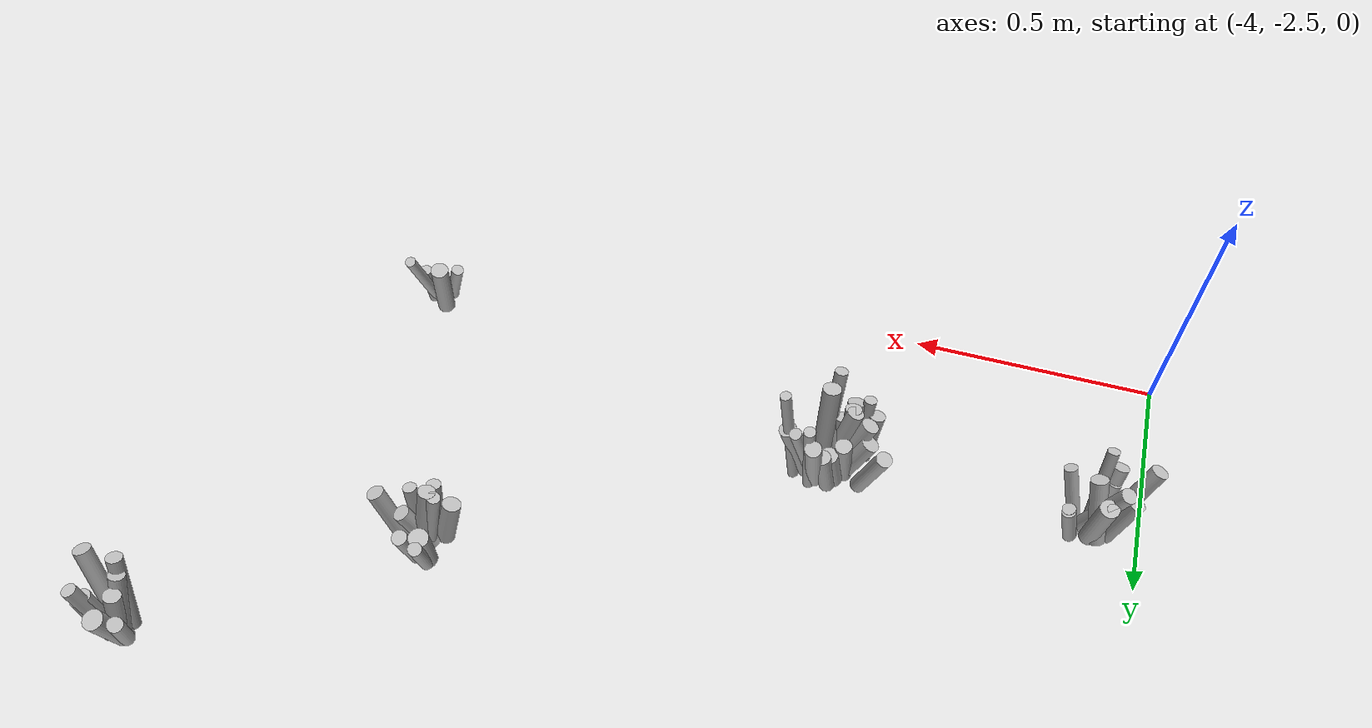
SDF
<sdf version="1.6">
 <world name="default">
  <model name="tussocks">
   <static>true</static>
   <link name="tuft16_1">
    <pose>-2.4690 -2.3362 0.0472 0 0.3118 2.7454</pose>
    <visual name="tuft16_1_v">
     <geometry><cylinder><radius>0.0131</radius><length>0.1025</length></cylinder></geometry>
     <material>
      <script>
       <uri>model://bushfire/materials/scripts</uri>
       <uri>model://bushfire/materials/textures</uri>
       <name>Bushfire/Foliage2</name>
      </script>
     </material>
    </visual>
   </link>
   <link name="tuft16_2">
    <pose>-2.4186 -2.2923 0.0840 0 0.3744 1.4002</pose>
    <visual name="tuft16_2_v">
     <geometry><cylinder><radius>0.0115</radius><length>0.1826</length></cylinder></geometry>
     <material>
      <script>
       <uri>model://bushfire/materials/scripts</uri>
       <uri>model://bushfire/materials/textures</uri>
       <name>Bushfire/Tussock</name>
      </script>
     </material>
    </visual>
   </link>
   <link name="tuft16_5">
    <pose>-2.4174 -2.3171 0.0454 0 0.1438 1.2560</pose>
    <visual name="tuft16_5_v">
     <geometry><cylinder><radius>0.0136</radius><length>0.0986</length></cylinder></geometry>
     <material>
      <script>
       <uri>model://bushfire/materials/scripts</uri>
       <uri>model://bushfire/materials/textures</uri>
       <name>Bushfire/Foliage2</name>
      </script>
     </material>
    </visual>
   </link>
   <link name="tuft16_6">
    <pose>-2.4590 -2.2957 0.0648 0 0.1835 2.0541</pose>
    <visual name="tuft16_6_v">
     <geometry><cylinder><radius>0.0190</radius><length>0.1408</length></cylinder></geometry>
     <material>
      <script>
       <uri>model://bushfire/materials/scripts</uri>
       <uri>model://bushfire/materials/textures</uri>
       <name>Bushfire/Tussock</name>
      </script>
     </material>
    </visual>
   </link>
   <link name="tuft28_0">
    <pose>-2.6673 -1.7583 0.0583 0 0.1272 4.6584</pose>
    <visual name="tuft28_0_v">
     <geometry><cylinder><radius>0.0145</radius><length>0.1268</length></cylinder></geometry>
     <material>
      <script>
       <uri>model://bushfire/materials/scripts</uri>
       <uri>model://bushfire/materials/textures</uri>
       <name>Bushfire/Foliage2</name>
      </script>
     </material>
    </visual>
   </link>
   <link name="tuft28_1">
    <pose>-2.5912 -1.7122 0.0620 0 0.3145 6.2268</pose>
    <visual name="tuft28_1_v">
     <geometry><cylinder><radius>0.0176</radius><length>0.1348</length></cylinder></geometry>
     <material>
      <script>
       <uri>model://bushfire/materials/scripts</uri>
       <uri>model://bushfire/materials/textures</uri>
       <name>Bushfire/Tussock</name>
      </script>
     </material>
    </visual>
   </link>
   <link name="tuft28_2">
    <pose>-2.6803 -1.6624 0.0541 0 0.2093 1.9016</pose>
    <visual name="tuft28_2_v">
     <geometry><cylinder><radius>0.0198</radius><length>0.1175</length></cylinder></geometry>
     <material>
      <script>
       <uri>model://bushfire/materials/scripts</uri>
       <uri>model://bushfire/materials/textures</uri>
       <name>Bushfire/Foliage2</name>
      </script>
     </material>
    </visual>
   </link>
   <link name="tuft28_3">
    <pose>-2.6801 -1.7109 0.0788 0 0.1868 3.3238</pose>
    <visual name="tuft28_3_v">
     <geometry><cylinder><radius>0.0136</radius><length>0.1713</length></cylinder></geometry>
     <material>
      <script>
       <uri>model://bushfire/materials/scripts</uri>
       <uri>model://bushfire/materials/textures</uri>
       <name>Bushfire/Tussock</name>
      </script>
     </material>
    </visual>
   </link>
   <link name="tuft28_4">
    <pose>-2.6987 -1.7409 0.0456 0 0.2671 3.9078</pose>
    <visual name="tuft28_4_v">
     <geometry><cylinder><radius>0.0187</radius><length>0.0992</length></cylinder></geometry>
     <material>
      <script>
       <uri>model://bushfire/materials/scripts</uri>
       <uri>model://bushfire/materials/textures</uri>
       <name>Bushfire/Tussock</name>
      </script>
     </material>
    </visual>
   </link>
   <link name="tuft28_5">
    <pose>-2.6509 -1.6593 0.0514 0 0.2732 1.2957</pose>
    <visual name="tuft28_5_v">
     <geometry><cylinder><radius>0.0156</radius><length>0.1118</length></cylinder></geometry>
     <material>
      <script>
       <uri>model://bushfire/materials/scripts</uri>
       <uri>model://bushfire/materials/textures</uri>
       <name>Bushfire/Tussock</name>
      </script>
     </material>
    </visual>
   </link>
   <link name="tuft28_6">
    <pose>-2.6853 -1.6417 0.0612 0 0.3454 1.8719</pose>
    <visual name="tuft28_6_v">
     <geometry><cylinder><radius>0.0136</radius><length>0.1330</length></cylinder></geometry>
     <material>
      <script>
       <uri>model://bushfire/materials/scripts</uri>
       <uri>model://bushfire/materials/textures</uri>
       <name>Bushfire/Tussock</name>
      </script>
     </material>
    </visual>
   </link>
   <link name="tuft28_7">
    <pose>-2.6664 -1.7096 0.0801 0 0.2022 3.8493</pose>
    <visual name="tuft28_7_v">
     <geometry><cylinder><radius>0.0171</radius><length>0.1742</length></cylinder></geometry>
     <material>
      <script>
       <uri>model://bushfire/materials/scripts</uri>
       <uri>model://bushfire/materials/textures</uri>
       <name>Bushfire/Tussock</name>
      </script>
     </material>
    </visual>
   </link>
   <link name="tuft28_8">
    <pose>-2.6193 -1.7573 0.0453 0 0.1311 5.4562</pose>
    <visual name="tuft28_8_v">
     <geometry><cylinder><radius>0.0141</radius><length>0.0984</length></cylinder></geometry>
     <material>
      <script>
       <uri>model://bushfire/materials/scripts</uri>
       <uri>model://bushfire/materials/textures</uri>
       <name>Bushfire/Foliage2</name>
      </script>
     </material>
    </visual>
   </link>
   <link name="tuft28_9">
    <pose>-2.6498 -1.7035 0.0529 0 0.4067 0.3012</pose>
    <visual name="tuft28_9_v">
     <geometry><cylinder><radius>0.0169</radius><length>0.1150</length></cylinder></geometry>
     <material>
      <script>
       <uri>model://bushfire/materials/scripts</uri>
       <uri>model://bushfire/materials/textures</uri>
       <name>Bushfire/Tussock</name>
      </script>
     </material>
    </visual>
   </link>
   <link name="tuft70_0">
    <pose>-3.9208 -2.1642 0.0631 0 0.3384 4.4041</pose>
    <visual name="tuft70_0_v">
     <geometry><cylinder><radius>0.0165</radius><length>0.1372</length></cylinder></geometry>
     <material>
      <script>
       <uri>model://bushfire/materials/scripts</uri>
       <uri>model://bushfire/materials/textures</uri>
       <name>Bushfire/Tussock</name>
      </script>
     </material>
    </visual>
   </link>
   <link name="tuft70_1">
    <pose>-3.8585 -2.0830 0.0480 0 0.2937 0.5918</pose>
    <visual name="tuft70_1_v">
     <geometry><cylinder><radius>0.0132</radius><length>0.1043</length></cylinder></geometry>
     <material>
      <script>
       <uri>model://bushfire/materials/scripts</uri>
       <uri>model://bushfire/materials/textures</uri>
       <name>Bushfire/Tussock</name>
      </script>
     </material>
    </visual>
   </link>
   <link name="tuft70_2">
    <pose>-3.9174 -2.1466 0.0491 0 0.3809 4.3457</pose>
    <visual name="tuft70_2_v">
     <geometry><cylinder><radius>0.0142</radius><length>0.1068</length></cylinder></geometry>
     <material>
      <script>
       <uri>model://bushfire/materials/scripts</uri>
       <uri>model://bushfire/materials/textures</uri>
       <name>Bushfire/Tussock</name>
      </script>
     </material>
    </visual>
   </link>
   <link name="tuft70_3">
    <pose>-3.9528 -2.1100 0.0588 0 0.2081 3.0536</pose>
    <visual name="tuft70_3_v">
     <geometry><cylinder><radius>0.0147</radius><length>0.1278</length></cylinder></geometry>
     <material>
      <script>
       <uri>model://bushfire/materials/scripts</uri>
       <uri>model://bushfire/materials/textures</uri>
       <name>Bushfire/Tussock</name>
      </script>
     </material>
    </visual>
   </link>
   <link name="tuft70_4">
    <pose>-3.8551 -2.1480 0.0604 0 0.3734 5.6871</pose>
    <visual name="tuft70_4_v">
     <geometry><cylinder><radius>0.0133</radius><length>0.1312</length></cylinder></geometry>
     <material>
      <script>
       <uri>model://bushfire/materials/scripts</uri>
       <uri>model://bushfire/materials/textures</uri>
       <name>Bushfire/Tussock</name>
      </script>
     </material>
    </visual>
   </link>
   <link name="tuft70_5">
    <pose>-3.9021 -2.1632 0.0835 0 0.2357 4.7695</pose>
    <visual name="tuft70_5_v">
     <geometry><cylinder><radius>0.0122</radius><length>0.1815</length></cylinder></geometry>
     <material>
      <script>
       <uri>model://bushfire/materials/scripts</uri>
       <uri>model://bushfire/materials/textures</uri>
       <name>Bushfire/Tussock</name>
      </script>
     </material>
    </visual>
   </link>
   <link name="tuft70_6">
    <pose>-3.9104 -2.0897 0.0644 0 0.1831 1.7881</pose>
    <visual name="tuft70_6_v">
     <geometry><cylinder><radius>0.0190</radius><length>0.1401</length></cylinder></geometry>
     <material>
      <script>
       <uri>model://bushfire/materials/scripts</uri>
       <uri>model://bushfire/materials/textures</uri>
       <name>Bushfire/Foliage2</name>
      </script>
     </material>
    </visual>
   </link>
   <link name="tuft70_7">
    <pose>-3.9048 -2.1144 0.0693 0 0.3600 5.4228</pose>
    <visual name="tuft70_7_v">
     <geometry><cylinder><radius>0.0173</radius><length>0.1507</length></cylinder></geometry>
     <material>
      <script>
       <uri>model://bushfire/materials/scripts</uri>
       <uri>model://bushfire/materials/textures</uri>
       <name>Bushfire/Foliage2</name>
      </script>
     </material>
    </visual>
   </link>
   <link name="tuft70_8">
    <pose>-3.9127 -2.0947 0.0650 0 0.2647 1.9473</pose>
    <visual name="tuft70_8_v">
     <geometry><cylinder><radius>0.0119</radius><length>0.1413</length></cylinder></geometry>
     <material>
      <script>
       <uri>model://bushfire/materials/scripts</uri>
       <uri>model://bushfire/materials/textures</uri>
       <name>Bushfire/Tussock</name>
      </script>
     </material>
    </visual>
   </link>
   <link name="tuft70_9">
    <pose>-3.9621 -2.1492 0.0820 0 0.3727 3.6912</pose>
    <visual name="tuft70_9_v">
     <geometry><cylinder><radius>0.0175</radius><length>0.1782</length></cylinder></geometry>
     <material>
      <script>
       <uri>model://bushfire/materials/scripts</uri>
       <uri>model://bushfire/materials/textures</uri>
       <name>Bushfire/Foliage2</name>
      </script>
     </material>
    </visual>
   </link>
   <link name="tuft70_10">
    <pose>-3.9132 -2.1105 0.0782 0 0.3498 2.7158</pose>
    <visual name="tuft70_10_v">
     <geometry><cylinder><radius>0.0164</radius><length>0.1701</length></cylinder></geometry>
     <material>
      <script>
       <uri>model://bushfire/materials/scripts</uri>
       <uri>model://bushfire/materials/textures</uri>
       <name>Bushfire/Foliage2</name>
      </script>
     </material>
    </visual>
   </link>
   <link name="tuft70_11">
    <pose>-3.8592 -2.0881 0.0488 0 0.3039 0.5189</pose>
    <visual name="tuft70_11_v">
     <geometry><cylinder><radius>0.0129</radius><length>0.1061</length></cylinder></geometry>
     <material>
      <script>
       <uri>model://bushfire/materials/scripts</uri>
       <uri>model://bushfire/materials/textures</uri>
       <name>Bushfire/Tussock</name>
      </script>
     </material>
    </visual>
   </link>
   <link name="tuft78_0">
    <pose>-3.3772 -2.1254 0.0714 0 0.2384 5.9199</pose>
    <visual name="tuft78_0_v">
     <geometry><cylinder><radius>0.0110</radius><length>0.1553</length></cylinder></geometry>
     <material>
      <script>
       <uri>model://bushfire/materials/scripts</uri>
       <uri>model://bushfire/materials/textures</uri>
       <name>Bushfire/Foliage2</name>
      </script>
     </material>
    </visual>
   </link>
   <link name="tuft78_1">
    <pose>-3.3927 -2.1527 0.0527 0 0.2338 5.1769</pose>
    <visual name="tuft78_1_v">
     <geometry><cylinder><radius>0.0163</radius><length>0.1146</length></cylinder></geometry>
     <material>
      <script>
       <uri>model://bushfire/materials/scripts</uri>
       <uri>model://bushfire/materials/textures</uri>
       <name>Bushfire/Tussock</name>
      </script>
     </material>
    </visual>
   </link>
   <link name="tuft78_2">
    <pose>-3.3773 -2.0618 0.0556 0 0.2351 0.9460</pose>
    <visual name="tuft78_2_v">
     <geometry><cylinder><radius>0.0162</radius><length>0.1209</length></cylinder></geometry>
     <material>
      <script>
       <uri>model://bushfire/materials/scripts</uri>
       <uri>model://bushfire/materials/textures</uri>
       <name>Bushfire/Foliage2</name>
      </script>
     </material>
    </visual>
   </link>
   <link name="tuft78_3">
    <pose>-3.4304 -2.1151 0.0511 0 0.4197 3.3369</pose>
    <visual name="tuft78_3_v">
     <geometry><cylinder><radius>0.0188</radius><length>0.1112</length></cylinder></geometry>
     <material>
      <script>
       <uri>model://bushfire/materials/scripts</uri>
       <uri>model://bushfire/materials/textures</uri>
       <name>Bushfire/Tussock</name>
      </script>
     </material>
    </visual>
   </link>
   <link name="tuft78_4">
    <pose>-3.3868 -2.0788 0.0485 0 0.2468 0.8932</pose>
    <visual name="tuft78_4_v">
     <geometry><cylinder><radius>0.0187</radius><length>0.1054</length></cylinder></geometry>
     <material>
      <script>
       <uri>model://bushfire/materials/scripts</uri>
       <uri>model://bushfire/materials/textures</uri>
       <name>Bushfire/Foliage2</name>
      </script>
     </material>
    </visual>
   </link>
   <link name="tuft78_5">
    <pose>-3.4461 -2.1749 0.0536 0 0.2241 4.2333</pose>
    <visual name="tuft78_5_v">
     <geometry><cylinder><radius>0.0177</radius><length>0.1164</length></cylinder></geometry>
     <material>
      <script>
       <uri>model://bushfire/materials/scripts</uri>
       <uri>model://bushfire/materials/textures</uri>
       <name>Bushfire/Tussock</name>
      </script>
     </material>
    </visual>
   </link>
   <link name="tuft78_6">
    <pose>-3.4070 -2.1474 0.0716 0 0.1447 4.8857</pose>
    <visual name="tuft78_6_v">
     <geometry><cylinder><radius>0.0170</radius><length>0.1556</length></cylinder></geometry>
     <material>
      <script>
       <uri>model://bushfire/materials/scripts</uri>
       <uri>model://bushfire/materials/textures</uri>
       <name>Bushfire/Foliage2</name>
      </script>
     </material>
    </visual>
   </link>
   <link name="tuft78_7">
    <pose>-3.4074 -2.0985 0.0557 0 0.1842 1.1557</pose>
    <visual name="tuft78_7_v">
     <geometry><cylinder><radius>0.0170</radius><length>0.1210</length></cylinder></geometry>
     <material>
      <script>
       <uri>model://bushfire/materials/scripts</uri>
       <uri>model://bushfire/materials/textures</uri>
       <name>Bushfire/Tussock</name>
      </script>
     </material>
    </visual>
   </link>
   <link name="tuft78_8">
    <pose>-3.4088 -2.1672 0.0661 0 0.3050 4.7927</pose>
    <visual name="tuft78_8_v">
     <geometry><cylinder><radius>0.0180</radius><length>0.1436</length></cylinder></geometry>
     <material>
      <script>
       <uri>model://bushfire/materials/scripts</uri>
       <uri>model://bushfire/materials/textures</uri>
       <name>Bushfire/Tussock</name>
      </script>
     </material>
    </visual>
   </link>
   <link name="tuft78_9">
    <pose>-3.4300 -2.1816 0.0703 0 0.1544 4.4767</pose>
    <visual name="tuft78_9_v">
     <geometry><cylinder><radius>0.0130</radius><length>0.1528</length></cylinder></geometry>
     <material>
      <script>
       <uri>model://bushfire/materials/scripts</uri>
       <uri>model://bushfire/materials/textures</uri>
       <name>Bushfire/Foliage2</name>
      </script>
     </material>
    </visual>
   </link>
   <link name="tuft78_10">
    <pose>-3.4656 -2.0762 0.0680 0 0.3285 2.5459</pose>
    <visual name="tuft78_10_v">
     <geometry><cylinder><radius>0.0167</radius><length>0.1479</length></cylinder></geometry>
     <material>
      <script>
       <uri>model://bushfire/materials/scripts</uri>
       <uri>model://bushfire/materials/textures</uri>
       <name>Bushfire/Tussock</name>
      </script>
     </material>
    </visual>
   </link>
   <link name="tuft137_0">
    <pose>-3.4204 -2.1320 0.0649 0 0.3739 3.5234</pose>
    <visual name="tuft137_0_v">
     <geometry><cylinder><radius>0.0185</radius><length>0.1412</length></cylinder></geometry>
     <material>
      <script>
       <uri>model://bushfire/materials/scripts</uri>
       <uri>model://bushfire/materials/textures</uri>
       <name>Bushfire/Tussock</name>
      </script>
     </material>
    </visual>
   </link>
   <link name="tuft137_1">
    <pose>-3.3430 -2.0522 0.0993 0 0.1689 1.2710</pose>
    <visual name="tuft137_1_v">
     <geometry><cylinder><radius>0.0119</radius><length>0.2158</length></cylinder></geometry>
     <material>
      <script>
       <uri>model://bushfire/materials/scripts</uri>
       <uri>model://bushfire/materials/textures</uri>
       <name>Bushfire/Tussock</name>
      </script>
     </material>
    </visual>
   </link>
   <link name="tuft137_2">
    <pose>-3.2957 -2.0771 0.1220 0 0.1439 0.4437</pose>
    <visual name="tuft137_2_v">
     <geometry><cylinder><radius>0.0111</radius><length>0.2652</length></cylinder></geometry>
     <material>
      <script>
       <uri>model://bushfire/materials/scripts</uri>
       <uri>model://bushfire/materials/textures</uri>
       <name>Bushfire/Tussock</name>
      </script>
     </material>
    </visual>
   </link>
   <link name="tuft137_3">
    <pose>-3.3136 -2.0867 0.0710 0 0.3428 0.4258</pose>
    <visual name="tuft137_3_v">
     <geometry><cylinder><radius>0.0179</radius><length>0.1542</length></cylinder></geometry>
     <material>
      <script>
       <uri>model://bushfire/materials/scripts</uri>
       <uri>model://bushfire/materials/textures</uri>
       <name>Bushfire/Tussock</name>
      </script>
     </material>
    </visual>
   </link>
   <link name="tuft137_4">
    <pose>-3.3939 -2.1349 0.0733 0 0.2780 3.8199</pose>
    <visual name="tuft137_4_v">
     <geometry><cylinder><radius>0.0173</radius><length>0.1594</length></cylinder></geometry>
     <material>
      <script>
       <uri>model://bushfire/materials/scripts</uri>
       <uri>model://bushfire/materials/textures</uri>
       <name>Bushfire/Foliage2</name>
      </script>
     </material>
    </visual>
   </link>
   <link name="tuft137_5">
    <pose>-3.3306 -2.0618 0.0954 0 0.3491 0.9987</pose>
    <visual name="tuft137_5_v">
     <geometry><cylinder><radius>0.0123</radius><length>0.2073</length></cylinder></geometry>
     <material>
      <script>
       <uri>model://bushfire/materials/scripts</uri>
       <uri>model://bushfire/materials/textures</uri>
       <name>Bushfire/Foliage2</name>
      </script>
     </material>
    </visual>
   </link>
   <link name="tuft137_6">
    <pose>-3.3643 -2.1638 0.1068 0 0.1986 4.6405</pose>
    <visual name="tuft137_6_v">
     <geometry><cylinder><radius>0.0136</radius><length>0.2322</length></cylinder></geometry>
     <material>
      <script>
       <uri>model://bushfire/materials/scripts</uri>
       <uri>model://bushfire/materials/textures</uri>
       <name>Bushfire/Tussock</name>
      </script>
     </material>
    </visual>
   </link>
   <link name="tuft137_7">
    <pose>-3.3590 -2.1202 0.1084 0 0.1192 4.8086</pose>
    <visual name="tuft137_7_v">
     <geometry><cylinder><radius>0.0185</radius><length>0.2357</length></cylinder></geometry>
     <material>
      <script>
       <uri>model://bushfire/materials/scripts</uri>
       <uri>model://bushfire/materials/textures</uri>
       <name>Bushfire/Tussock</name>
      </script>
     </material>
    </visual>
   </link>
   <link name="tuft137_8">
    <pose>-3.3540 -2.0480 0.0880 0 0.3311 1.4667</pose>
    <visual name="tuft137_8_v">
     <geometry><cylinder><radius>0.0168</radius><length>0.1912</length></cylinder></geometry>
     <material>
      <script>
       <uri>model://bushfire/materials/scripts</uri>
       <uri>model://bushfire/materials/textures</uri>
       <name>Bushfire/Foliage2</name>
      </script>
     </material>
    </visual>
   </link>
   <link name="tuft181_0">
    <pose>-2.2284 -1.3345 0.0651 0 0.3847 2.5315</pose>
    <visual name="tuft181_0_v">
     <geometry><cylinder><radius>0.0146</radius><length>0.1414</length></cylinder></geometry>
     <material>
      <script>
       <uri>model://bushfire/materials/scripts</uri>
       <uri>model://bushfire/materials/textures</uri>
       <name>Bushfire/Tussock</name>
      </script>
     </material>
    </visual>
   </link>
   <link name="tuft181_3">
    <pose>-2.2030 -1.3592 0.0649 0 0.2171 3.7539</pose>
    <visual name="tuft181_3_v">
     <geometry><cylinder><radius>0.0166</radius><length>0.1410</length></cylinder></geometry>
     <material>
      <script>
       <uri>model://bushfire/materials/scripts</uri>
       <uri>model://bushfire/materials/textures</uri>
       <name>Bushfire/Foliage2</name>
      </script>
     </material>
    </visual>
   </link>
   <link name="tuft181_4">
    <pose>-2.1994 -1.4020 0.0828 0 0.2448 4.6823</pose>
    <visual name="tuft181_4_v">
     <geometry><cylinder><radius>0.0158</radius><length>0.1799</length></cylinder></geometry>
     <material>
      <script>
       <uri>model://bushfire/materials/scripts</uri>
       <uri>model://bushfire/materials/textures</uri>
       <name>Bushfire/Tussock</name>
      </script>
     </material>
    </visual>
   </link>
   <link name="tuft181_5">
    <pose>-2.2032 -1.3772 0.0726 0 0.3330 4.4754</pose>
    <visual name="tuft181_5_v">
     <geometry><cylinder><radius>0.0158</radius><length>0.1579</length></cylinder></geometry>
     <material>
      <script>
       <uri>model://bushfire/materials/scripts</uri>
       <uri>model://bushfire/materials/textures</uri>
       <name>Bushfire/Tussock</name>
      </script>
     </material>
    </visual>
   </link>
   <link name="tuft181_6">
    <pose>-2.1601 -1.3554 0.0547 0 0.1811 0.0071</pose>
    <visual name="tuft181_6_v">
     <geometry><cylinder><radius>0.0200</radius><length>0.1189</length></cylinder></geometry>
     <material>
      <script>
       <uri>model://bushfire/materials/scripts</uri>
       <uri>model://bushfire/materials/textures</uri>
       <name>Bushfire/Foliage2</name>
      </script>
     </material>
    </visual>
   </link>
   <link name="tuft181_9">
    <pose>-2.1967 -1.3382 0.0551 0 0.2639 1.4987</pose>
    <visual name="tuft181_9_v">
     <geometry><cylinder><radius>0.0200</radius><length>0.1198</length></cylinder></geometry>
     <material>
      <script>
       <uri>model://bushfire/materials/scripts</uri>
       <uri>model://bushfire/materials/textures</uri>
       <name>Bushfire/Foliage2</name>
      </script>
     </material>
    </visual>
   </link>
   <link name="tuft181_10">
    <pose>-2.1529 -1.4025 0.0825 0 0.3321 5.4798</pose>
    <visual name="tuft181_10_v">
     <geometry><cylinder><radius>0.0174</radius><length>0.1794</length></cylinder></geometry>
     <material>
      <script>
       <uri>model://bushfire/materials/scripts</uri>
       <uri>model://bushfire/materials/textures</uri>
       <name>Bushfire/Tussock</name>
      </script>
     </material>
    </visual>
   </link>
   <link name="tuft181_11">
    <pose>-2.1633 -1.3504 0.0738 0 0.2046 0.1533</pose>
    <visual name="tuft181_11_v">
     <geometry><cylinder><radius>0.0143</radius><length>0.1605</length></cylinder></geometry>
     <material>
      <script>
       <uri>model://bushfire/materials/scripts</uri>
       <uri>model://bushfire/materials/textures</uri>
       <name>Bushfire/Tussock</name>
      </script>
     </material>
    </visual>
   </link>
  </model>
 </world>
</sdf>
